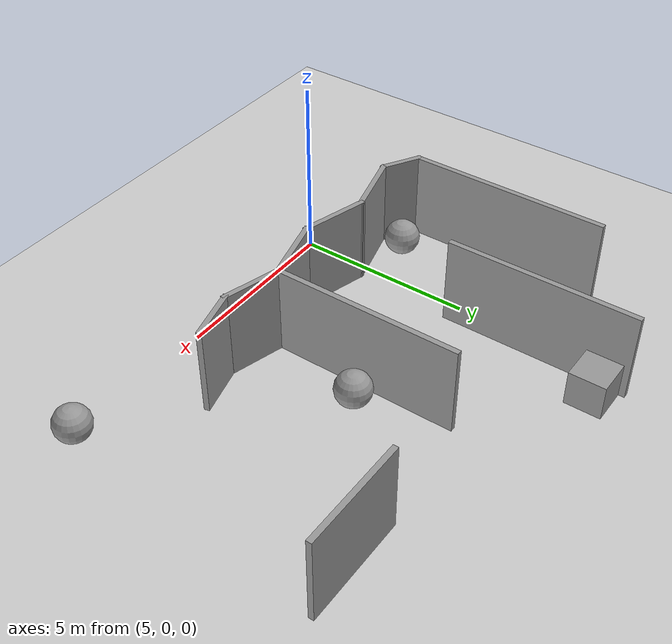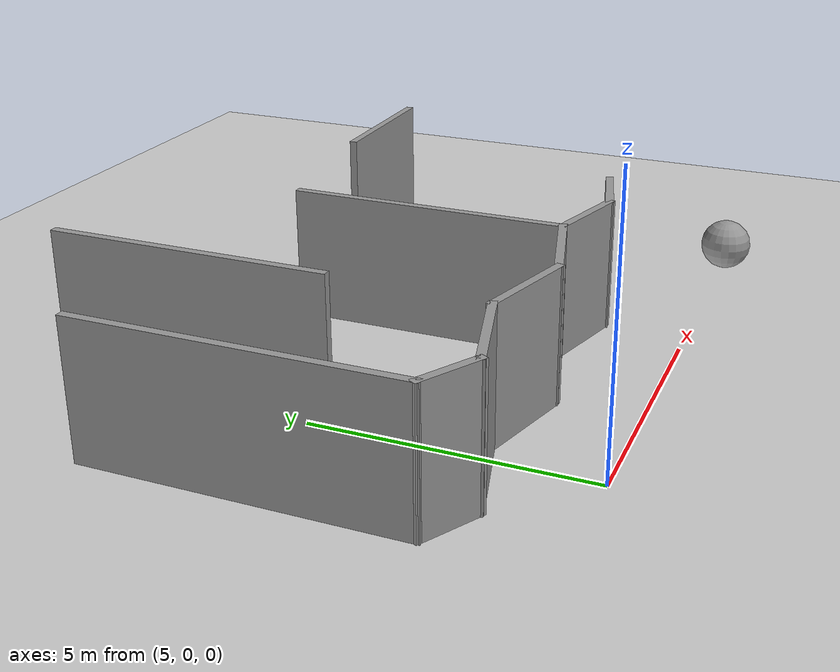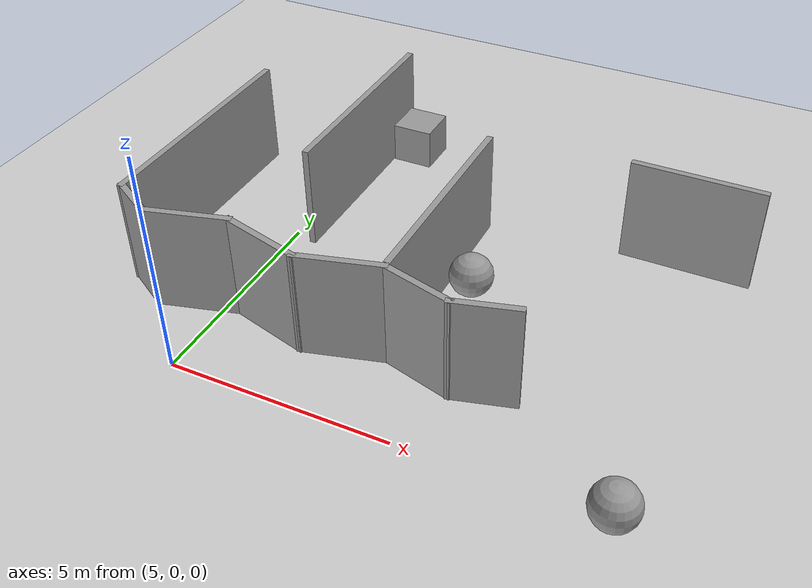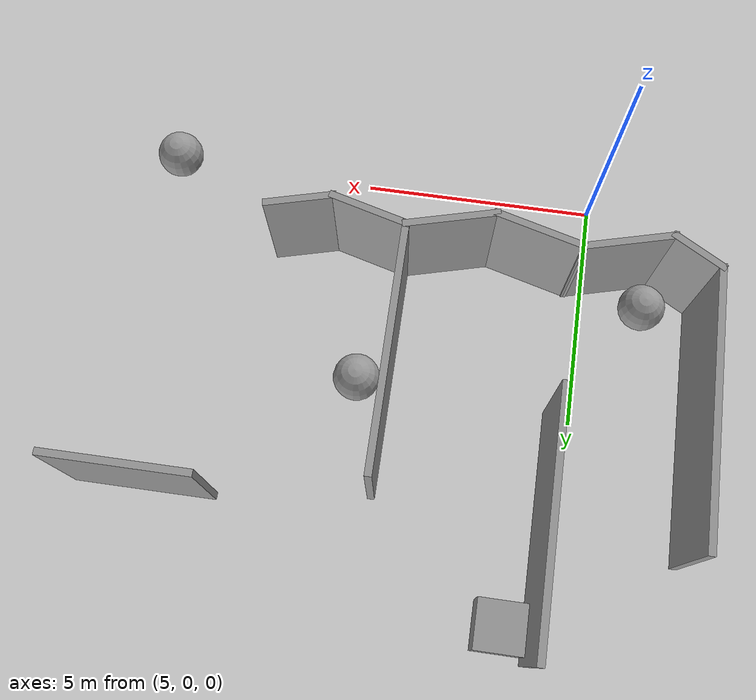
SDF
<sdf version="1.7">
 <world name="default">
  <model name="ground_plane">
   <static>1</static>
   <link name="link">
    <collision name="collision">
     <geometry><plane><normal>0 0 1</normal><size>100 100</size></plane></geometry>
     <surface>
      <contact><collide_bitmask>65535</collide_bitmask></contact>
      <friction><ode><mu>100</mu><mu2>50</mu2></ode></friction>
     </surface>
    </collision>
    <visual name="visual">
     <cast_shadows>0</cast_shadows>
     <geometry><plane><normal>0 0 1</normal><size>100 100</size></plane></geometry>
     <material>
      <script><uri>file://media/materials/scripts/gazebo.material</uri><name>Gazebo/Grey</name></script>
     </material>
    </visual>
   </link>
  </model>
  <model name="unit_sphere">
   <pose>14.3692 0.007494 0.5 0 -0 0</pose>
   <link name="link">
    <inertial>
     <mass>1</mass>
     <inertia><ixx>0.1</ixx><ixy>0</ixy><ixz>0</ixz><iyy>0.1</iyy><iyz>0</iyz><izz>0.1</izz></inertia>
    </inertial>
    <collision name="collision"><geometry><sphere><radius>0.5</radius></sphere></geometry></collision>
    <visual name="visual">
     <geometry><sphere><radius>0.5</radius></sphere></geometry>
     <material>
      <script><name>Gazebo/Grey</name><uri>file://media/materials/scripts/gazebo.material</uri></script>
     </material>
    </visual>
   </link>
  </model>
  <model name="Untitled_0">
   <link name="Wall_101">
    <pose>8.911 4.53478 0 0 -0 1.5708</pose>
    <visual name="Wall_101_Visual">
     <pose>0 0 1.25 0 -0 0</pose>
     <geometry><box><size>5.25 0.15 2.5</size></box></geometry>
     <material>
      <script><uri>file://media/materials/scripts/gazebo.material</uri><name>Gazebo/Grey</name></script>
      <ambient>1 1 1 1</ambient>
      <shader type="pixel"/>
     </material>
     <meta><layer>0</layer></meta>
    </visual>
    <collision name="Wall_101_Collision">
     <pose>0 0 1.25 0 -0 0</pose>
     <geometry><box><size>5.25 0.15 2.5</size></box></geometry>
     <surface>
      <friction>
       <ode><mu>1</mu><mu2>1</mu2><fdir1>0 0 0</fdir1><slip1>0</slip1><slip2>0</slip2></ode>
       <torsional>
        <coefficient>1</coefficient>
        <patch_radius>0</patch_radius>
        <surface_radius>0</surface_radius>
        <use_patch_radius>1</use_patch_radius>
        <ode><slip>0</slip></ode>
       </torsional>
      </friction>
      <bounce><restitution_coefficient>0</restitution_coefficient><threshold>1e+06</threshold></bounce>
      <contact>
       <collide_without_contact>0</collide_without_contact>
       <collide_without_contact_bitmask>1</collide_without_contact_bitmask>
       <collide_bitmask>1</collide_bitmask>
       <ode>
        <soft_cfm>0</soft_cfm>
        <soft_erp>0.2</soft_erp>
        <kp>1e+13</kp>
        <kd>1</kd>
        <max_vel>0.01</max_vel>
        <min_depth>0</min_depth>
       </ode>
       <bullet>
        <split_impulse>1</split_impulse>
        <split_impulse_penetration_threshold>-0.01</split_impulse_penetration_threshold>
        <soft_cfm>0</soft_cfm>
        <soft_erp>0.2</soft_erp>
        <kp>1e+13</kp>
        <kd>1</kd>
       </bullet>
      </contact>
     </surface>
    </collision>
   </link>
   <link name="Wall_105">
    <pose>13.6032 7.54437 0 0 -0 3.14159</pose>
    <visual name="Wall_105_Visual">
     <pose>0 0 1.25 0 -0 0</pose>
     <geometry><box><size>3 0.15 2.5</size></box></geometry>
     <material>
      <script><uri>file://media/materials/scripts/gazebo.material</uri><name>Gazebo/Grey</name></script>
      <ambient>1 1 1 1</ambient>
      <shader type="pixel"/>
     </material>
     <meta><layer>0</layer></meta>
    </visual>
    <collision name="Wall_105_Collision">
     <pose>0 0 1.25 0 -0 0</pose>
     <geometry><box><size>3 0.15 2.5</size></box></geometry>
     <surface>
      <friction>
       <ode><mu>1</mu><mu2>1</mu2><fdir1>0 0 0</fdir1><slip1>0</slip1><slip2>0</slip2></ode>
       <torsional>
        <coefficient>1</coefficient>
        <patch_radius>0</patch_radius>
        <surface_radius>0</surface_radius>
        <use_patch_radius>1</use_patch_radius>
        <ode><slip>0</slip></ode>
       </torsional>
      </friction>
      <bounce><restitution_coefficient>0</restitution_coefficient><threshold>1e+06</threshold></bounce>
      <contact>
       <collide_without_contact>0</collide_without_contact>
       <collide_without_contact_bitmask>1</collide_without_contact_bitmask>
       <collide_bitmask>1</collide_bitmask>
       <ode>
        <soft_cfm>0</soft_cfm>
        <soft_erp>0.2</soft_erp>
        <kp>1e+13</kp>
        <kd>1</kd>
        <max_vel>0.01</max_vel>
        <min_depth>0</min_depth>
       </ode>
       <bullet>
        <split_impulse>1</split_impulse>
        <split_impulse_penetration_threshold>-0.01</split_impulse_penetration_threshold>
        <soft_cfm>0</soft_cfm>
        <soft_erp>0.2</soft_erp>
        <kp>1e+13</kp>
        <kd>1</kd>
       </bullet>
      </contact>
     </surface>
    </collision>
   </link>
   <link name="Wall_89">
    <pose>2.59748 4.85596 0 0 0 -1.5708</pose>
    <visual name="Wall_89_Visual">
     <pose>0 0 1.25 0 -0 0</pose>
     <geometry><box><size>5.75 0.15 2.5</size></box></geometry>
     <material>
      <script><uri>file://media/materials/scripts/gazebo.material</uri><name>Gazebo/Grey</name></script>
      <ambient>1 1 1 1</ambient>
      <shader type="pixel"/>
     </material>
     <meta><layer>0</layer></meta>
    </visual>
    <collision name="Wall_89_Collision">
     <pose>0 0 1.25 0 -0 0</pose>
     <geometry><box><size>5.75 0.15 2.5</size></box></geometry>
     <surface>
      <friction>
       <ode><mu>1</mu><mu2>1</mu2><fdir1>0 0 0</fdir1><slip1>0</slip1><slip2>0</slip2></ode>
       <torsional>
        <coefficient>1</coefficient>
        <patch_radius>0</patch_radius>
        <surface_radius>0</surface_radius>
        <use_patch_radius>1</use_patch_radius>
        <ode><slip>0</slip></ode>
       </torsional>
      </friction>
      <bounce><restitution_coefficient>0</restitution_coefficient><threshold>1e+06</threshold></bounce>
      <contact>
       <collide_without_contact>0</collide_without_contact>
       <collide_without_contact_bitmask>1</collide_without_contact_bitmask>
       <collide_bitmask>1</collide_bitmask>
       <ode>
        <soft_cfm>0</soft_cfm>
        <soft_erp>0.2</soft_erp>
        <kp>1e+13</kp>
        <kd>1</kd>
        <max_vel>0.01</max_vel>
        <min_depth>0</min_depth>
       </ode>
       <bullet>
        <split_impulse>1</split_impulse>
        <split_impulse_penetration_threshold>-0.01</split_impulse_penetration_threshold>
        <soft_cfm>0</soft_cfm>
        <soft_erp>0.2</soft_erp>
        <kp>1e+13</kp>
        <kd>1</kd>
       </bullet>
      </contact>
     </surface>
    </collision>
   </link>
   <link name="Wall_91">
    <pose>3.0738 1.78096 0 0 0 -0.523599</pose>
    <visual name="Wall_91_Visual">
     <pose>0 0 1.25 0 -0 0</pose>
     <geometry><box><size>1.25 0.15 2.5</size></box></geometry>
     <material>
      <script><uri>file://media/materials/scripts/gazebo.material</uri><name>Gazebo/Grey</name></script>
      <ambient>1 1 1 1</ambient>
      <shader type="pixel"/>
     </material>
     <meta><layer>0</layer></meta>
    </visual>
    <collision name="Wall_91_Collision">
     <pose>0 0 1.25 0 -0 0</pose>
     <geometry><box><size>1.25 0.15 2.5</size></box></geometry>
     <surface>
      <friction>
       <ode><mu>1</mu><mu2>1</mu2><fdir1>0 0 0</fdir1><slip1>0</slip1><slip2>0</slip2></ode>
       <torsional>
        <coefficient>1</coefficient>
        <patch_radius>0</patch_radius>
        <surface_radius>0</surface_radius>
        <use_patch_radius>1</use_patch_radius>
        <ode><slip>0</slip></ode>
       </torsional>
      </friction>
      <bounce><restitution_coefficient>0</restitution_coefficient><threshold>1e+06</threshold></bounce>
      <contact>
       <collide_without_contact>0</collide_without_contact>
       <collide_without_contact_bitmask>1</collide_without_contact_bitmask>
       <collide_bitmask>1</collide_bitmask>
       <ode>
        <soft_cfm>0</soft_cfm>
        <soft_erp>0.2</soft_erp>
        <kp>1e+13</kp>
        <kd>1</kd>
        <max_vel>0.01</max_vel>
        <min_depth>0</min_depth>
       </ode>
       <bullet>
        <split_impulse>1</split_impulse>
        <split_impulse_penetration_threshold>-0.01</split_impulse_penetration_threshold>
        <soft_cfm>0</soft_cfm>
        <soft_erp>0.2</soft_erp>
        <kp>1e+13</kp>
        <kd>1</kd>
       </bullet>
      </contact>
     </surface>
    </collision>
   </link>
   <link name="Wall_92">
    <pose>4.44359 1.74537 0 0 -0 0.261799</pose>
    <visual name="Wall_92_Visual">
     <pose>0 0 1.25 0 -0 0</pose>
     <geometry><box><size>2 0.15 2.5</size></box></geometry>
     <material>
      <script><uri>file://media/materials/scripts/gazebo.material</uri><name>Gazebo/Grey</name></script>
      <ambient>1 1 1 1</ambient>
      <shader type="pixel"/>
     </material>
     <meta><layer>0</layer></meta>
    </visual>
    <collision name="Wall_92_Collision">
     <pose>0 0 1.25 0 -0 0</pose>
     <geometry><box><size>2 0.15 2.5</size></box></geometry>
     <surface>
      <friction>
       <ode><mu>1</mu><mu2>1</mu2><fdir1>0 0 0</fdir1><slip1>0</slip1><slip2>0</slip2></ode>
       <torsional>
        <coefficient>1</coefficient>
        <patch_radius>0</patch_radius>
        <surface_radius>0</surface_radius>
        <use_patch_radius>1</use_patch_radius>
        <ode><slip>0</slip></ode>
       </torsional>
      </friction>
      <bounce><restitution_coefficient>0</restitution_coefficient><threshold>1e+06</threshold></bounce>
      <contact>
       <collide_without_contact>0</collide_without_contact>
       <collide_without_contact_bitmask>1</collide_without_contact_bitmask>
       <collide_bitmask>1</collide_bitmask>
       <ode>
        <soft_cfm>0</soft_cfm>
        <soft_erp>0.2</soft_erp>
        <kp>1e+13</kp>
        <kd>1</kd>
        <max_vel>0.01</max_vel>
        <min_depth>0</min_depth>
       </ode>
       <bullet>
        <split_impulse>1</split_impulse>
        <split_impulse_penetration_threshold>-0.01</split_impulse_penetration_threshold>
        <soft_cfm>0</soft_cfm>
        <soft_erp>0.2</soft_erp>
        <kp>1e+13</kp>
        <kd>1</kd>
       </bullet>
      </contact>
     </surface>
    </collision>
   </link>
   <link name="Wall_93">
    <pose>6.23056 1.74537 0 0 0 -0.261799</pose>
    <visual name="Wall_93_Visual">
     <pose>0 0 1.25 0 -0 0</pose>
     <geometry><box><size>2 0.15 2.5</size></box></geometry>
     <material>
      <script><uri>file://media/materials/scripts/gazebo.material</uri><name>Gazebo/Grey</name></script>
      <ambient>1 1 1 1</ambient>
      <shader type="pixel"/>
     </material>
     <meta><layer>0</layer></meta>
    </visual>
    <collision name="Wall_93_Collision">
     <pose>0 0 1.25 0 -0 0</pose>
     <geometry><box><size>2 0.15 2.5</size></box></geometry>
     <surface>
      <friction>
       <ode><mu>1</mu><mu2>1</mu2><fdir1>0 0 0</fdir1><slip1>0</slip1><slip2>0</slip2></ode>
       <torsional>
        <coefficient>1</coefficient>
        <patch_radius>0</patch_radius>
        <surface_radius>0</surface_radius>
        <use_patch_radius>1</use_patch_radius>
        <ode><slip>0</slip></ode>
       </torsional>
      </friction>
      <bounce><restitution_coefficient>0</restitution_coefficient><threshold>1e+06</threshold></bounce>
      <contact>
       <collide_without_contact>0</collide_without_contact>
       <collide_without_contact_bitmask>1</collide_without_contact_bitmask>
       <collide_bitmask>1</collide_bitmask>
       <ode>
        <soft_cfm>0</soft_cfm>
        <soft_erp>0.2</soft_erp>
        <kp>1e+13</kp>
        <kd>1</kd>
        <max_vel>0.01</max_vel>
        <min_depth>0</min_depth>
       </ode>
       <bullet>
        <split_impulse>1</split_impulse>
        <split_impulse_penetration_threshold>-0.01</split_impulse_penetration_threshold>
        <soft_cfm>0</soft_cfm>
        <soft_erp>0.2</soft_erp>
        <kp>1e+13</kp>
        <kd>1</kd>
       </bullet>
      </contact>
     </surface>
    </collision>
   </link>
   <link name="Wall_94">
    <pose>8.01752 1.74537 0 0 -0 0.261799</pose>
    <visual name="Wall_94_Visual">
     <pose>0 0 1.25 0 -0 0</pose>
     <geometry><box><size>2 0.15 2.5</size></box></geometry>
     <material>
      <script><uri>file://media/materials/scripts/gazebo.material</uri><name>Gazebo/Grey</name></script>
      <ambient>1 1 1 1</ambient>
      <shader type="pixel"/>
     </material>
     <meta><layer>0</layer></meta>
    </visual>
    <collision name="Wall_94_Collision">
     <pose>0 0 1.25 0 -0 0</pose>
     <geometry><box><size>2 0.15 2.5</size></box></geometry>
     <surface>
      <friction>
       <ode><mu>1</mu><mu2>1</mu2><fdir1>0 0 0</fdir1><slip1>0</slip1><slip2>0</slip2></ode>
       <torsional>
        <coefficient>1</coefficient>
        <patch_radius>0</patch_radius>
        <surface_radius>0</surface_radius>
        <use_patch_radius>1</use_patch_radius>
        <ode><slip>0</slip></ode>
       </torsional>
      </friction>
      <bounce><restitution_coefficient>0</restitution_coefficient><threshold>1e+06</threshold></bounce>
      <contact>
       <collide_without_contact>0</collide_without_contact>
       <collide_without_contact_bitmask>1</collide_without_contact_bitmask>
       <collide_bitmask>1</collide_bitmask>
       <ode>
        <soft_cfm>0</soft_cfm>
        <soft_erp>0.2</soft_erp>
        <kp>1e+13</kp>
        <kd>1</kd>
        <max_vel>0.01</max_vel>
        <min_depth>0</min_depth>
       </ode>
       <bullet>
        <split_impulse>1</split_impulse>
        <split_impulse_penetration_threshold>-0.01</split_impulse_penetration_threshold>
        <soft_cfm>0</soft_cfm>
        <soft_erp>0.2</soft_erp>
        <kp>1e+13</kp>
        <kd>1</kd>
       </bullet>
      </contact>
     </surface>
    </collision>
   </link>
   <link name="Wall_95">
    <pose>9.68374 1.77772 0 0 0 -0.261799</pose>
    <visual name="Wall_95_Visual">
     <pose>0 0 1.25 0 -0 0</pose>
     <geometry><box><size>1.75 0.15 2.5</size></box></geometry>
     <material>
      <script><uri>file://media/materials/scripts/gazebo.material</uri><name>Gazebo/Grey</name></script>
      <ambient>1 1 1 1</ambient>
      <shader type="pixel"/>
     </material>
     <meta><layer>0</layer></meta>
    </visual>
    <collision name="Wall_95_Collision">
     <pose>0 0 1.25 0 -0 0</pose>
     <geometry><box><size>1.75 0.15 2.5</size></box></geometry>
     <surface>
      <friction>
       <ode><mu>1</mu><mu2>1</mu2><fdir1>0 0 0</fdir1><slip1>0</slip1><slip2>0</slip2></ode>
       <torsional>
        <coefficient>1</coefficient>
        <patch_radius>0</patch_radius>
        <surface_radius>0</surface_radius>
        <use_patch_radius>1</use_patch_radius>
        <ode><slip>0</slip></ode>
       </torsional>
      </friction>
      <bounce><restitution_coefficient>0</restitution_coefficient><threshold>1e+06</threshold></bounce>
      <contact>
       <collide_without_contact>0</collide_without_contact>
       <collide_without_contact_bitmask>1</collide_without_contact_bitmask>
       <collide_bitmask>1</collide_bitmask>
       <ode>
        <soft_cfm>0</soft_cfm>
        <soft_erp>0.2</soft_erp>
        <kp>1e+13</kp>
        <kd>1</kd>
        <max_vel>0.01</max_vel>
        <min_depth>0</min_depth>
       </ode>
       <bullet>
        <split_impulse>1</split_impulse>
        <split_impulse_penetration_threshold>-0.01</split_impulse_penetration_threshold>
        <soft_cfm>0</soft_cfm>
        <soft_erp>0.2</soft_erp>
        <kp>1e+13</kp>
        <kd>1</kd>
       </bullet>
      </contact>
     </surface>
    </collision>
   </link>
   <link name="Wall_96">
    <pose>11.1085 1.74537 0 0 -0 0.261799</pose>
    <visual name="Wall_96_Visual">
     <pose>0 0 1.25 0 -0 0</pose>
     <geometry><box><size>1.5 0.15 2.5</size></box></geometry>
     <material>
      <script><uri>file://media/materials/scripts/gazebo.material</uri><name>Gazebo/Grey</name></script>
      <ambient>1 1 1 1</ambient>
      <shader type="pixel"/>
     </material>
     <meta><layer>0</layer></meta>
    </visual>
    <collision name="Wall_96_Collision">
     <pose>0 0 1.25 0 -0 0</pose>
     <geometry><box><size>1.5 0.15 2.5</size></box></geometry>
     <surface>
      <friction>
       <ode><mu>1</mu><mu2>1</mu2><fdir1>0 0 0</fdir1><slip1>0</slip1><slip2>0</slip2></ode>
       <torsional>
        <coefficient>1</coefficient>
        <patch_radius>0</patch_radius>
        <surface_radius>0</surface_radius>
        <use_patch_radius>1</use_patch_radius>
        <ode><slip>0</slip></ode>
       </torsional>
      </friction>
      <bounce><restitution_coefficient>0</restitution_coefficient><threshold>1e+06</threshold></bounce>
      <contact>
       <collide_without_contact>0</collide_without_contact>
       <collide_without_contact_bitmask>1</collide_without_contact_bitmask>
       <collide_bitmask>1</collide_bitmask>
       <ode>
        <soft_cfm>0</soft_cfm>
        <soft_erp>0.2</soft_erp>
        <kp>1e+13</kp>
        <kd>1</kd>
        <max_vel>0.01</max_vel>
        <min_depth>0</min_depth>
       </ode>
       <bullet>
        <split_impulse>1</split_impulse>
        <split_impulse_penetration_threshold>-0.01</split_impulse_penetration_threshold>
        <soft_cfm>0</soft_cfm>
        <soft_erp>0.2</soft_erp>
        <kp>1e+13</kp>
        <kd>1</kd>
       </bullet>
      </contact>
     </surface>
    </collision>
   </link>
   <link name="Wall_99">
    <pose>5.45408 7.42695 0 0 0 -1.5708</pose>
    <visual name="Wall_99_Visual">
     <pose>0 0 1.25 0 -0 0</pose>
     <geometry><box><size>5.25 0.15 2.5</size></box></geometry>
     <material>
      <script><uri>file://media/materials/scripts/gazebo.material</uri><name>Gazebo/Grey</name></script>
      <ambient>1 1 1 1</ambient>
      <shader type="pixel"/>
     </material>
     <meta><layer>0</layer></meta>
    </visual>
    <collision name="Wall_99_Collision">
     <pose>0 0 1.25 0 -0 0</pose>
     <geometry><box><size>5.25 0.15 2.5</size></box></geometry>
     <surface>
      <friction>
       <ode><mu>1</mu><mu2>1</mu2><fdir1>0 0 0</fdir1><slip1>0</slip1><slip2>0</slip2></ode>
       <torsional>
        <coefficient>1</coefficient>
        <patch_radius>0</patch_radius>
        <surface_radius>0</surface_radius>
        <use_patch_radius>1</use_patch_radius>
        <ode><slip>0</slip></ode>
       </torsional>
      </friction>
      <bounce><restitution_coefficient>0</restitution_coefficient><threshold>1e+06</threshold></bounce>
      <contact>
       <collide_without_contact>0</collide_without_contact>
       <collide_without_contact_bitmask>1</collide_without_contact_bitmask>
       <collide_bitmask>1</collide_bitmask>
       <ode>
        <soft_cfm>0</soft_cfm>
        <soft_erp>0.2</soft_erp>
        <kp>1e+13</kp>
        <kd>1</kd>
        <max_vel>0.01</max_vel>
        <min_depth>0</min_depth>
       </ode>
       <bullet>
        <split_impulse>1</split_impulse>
        <split_impulse_penetration_threshold>-0.01</split_impulse_penetration_threshold>
        <soft_cfm>0</soft_cfm>
        <soft_erp>0.2</soft_erp>
        <kp>1e+13</kp>
        <kd>1</kd>
       </bullet>
      </contact>
     </surface>
    </collision>
   </link>
   <link name="link_12">
    <inertial>
     <mass>1</mass>
     <inertia>
      <ixx>0.166667</ixx>
      <ixy>0</ixy>
      <ixz>0</ixz>
      <iyy>0.166667</iyy>
      <iyz>0</iyz>
      <izz>0.166667</izz>
     </inertia>
    </inertial>
    <pose>6.05031 9.38961 0.5 0 -0 0</pose>
    <visual name="visual">
     <geometry><box><size>1 1 1</size></box></geometry>
     <material>
      <lighting>1</lighting>
      <script><uri>file://media/materials/scripts/gazebo.material</uri><name>Gazebo/Grey</name></script>
      <shader type="pixel"/>
     </material>
    </visual>
    <collision name="collision">
     <geometry><box><size>1 1 1</size></box></geometry>
     <surface>
      <friction>
       <ode><mu>1</mu><mu2>1</mu2><fdir1>0 0 0</fdir1><slip1>0</slip1><slip2>0</slip2></ode>
       <torsional>
        <coefficient>1</coefficient>
        <patch_radius>0</patch_radius>
        <surface_radius>0</surface_radius>
        <use_patch_radius>1</use_patch_radius>
        <ode><slip>0</slip></ode>
       </torsional>
      </friction>
      <bounce><restitution_coefficient>0</restitution_coefficient><threshold>1e+06</threshold></bounce>
      <contact>
       <collide_without_contact>0</collide_without_contact>
       <collide_without_contact_bitmask>1</collide_without_contact_bitmask>
       <collide_bitmask>1</collide_bitmask>
       <ode>
        <soft_cfm>0</soft_cfm>
        <soft_erp>0.2</soft_erp>
        <kp>1e+13</kp>
        <kd>1</kd>
        <max_vel>0.01</max_vel>
        <min_depth>0</min_depth>
       </ode>
       <bullet>
        <split_impulse>1</split_impulse>
        <split_impulse_penetration_threshold>-0.01</split_impulse_penetration_threshold>
        <soft_cfm>0</soft_cfm>
        <soft_erp>0.2</soft_erp>
        <kp>1e+13</kp>
        <kd>1</kd>
       </bullet>
      </contact>
     </surface>
    </collision>
   </link>
   <link name="link_17">
    <inertial>
     <mass>1</mass>
     <inertia><ixx>0.1</ixx><ixy>0</ixy><ixz>0</ixz><iyy>0.1</iyy><iyz>0</iyz><izz>0.1</izz></inertia>
    </inertial>
    <pose>9.56883 4.71018 0.5 0 -0 0</pose>
    <visual name="visual">
     <geometry><sphere><radius>0.5</radius></sphere></geometry>
     <material>
      <lighting>1</lighting>
      <script><uri>file://media/materials/scripts/gazebo.material</uri><name>Gazebo/Grey</name></script>
      <shader type="pixel"/>
     </material>
    </visual>
    <collision name="collision">
     <geometry><sphere><radius>0.5</radius></sphere></geometry>
     <surface>
      <friction>
       <ode><mu>1</mu><mu2>1</mu2><fdir1>0 0 0</fdir1><slip1>0</slip1><slip2>0</slip2></ode>
       <torsional>
        <coefficient>1</coefficient>
        <patch_radius>0</patch_radius>
        <surface_radius>0</surface_radius>
        <use_patch_radius>1</use_patch_radius>
        <ode><slip>0</slip></ode>
       </torsional>
      </friction>
      <bounce><restitution_coefficient>0</restitution_coefficient><threshold>1e+06</threshold></bounce>
      <contact>
       <collide_without_contact>0</collide_without_contact>
       <collide_without_contact_bitmask>1</collide_without_contact_bitmask>
       <collide_bitmask>1</collide_bitmask>
       <ode>
        <soft_cfm>0</soft_cfm>
        <soft_erp>0.2</soft_erp>
        <kp>1e+13</kp>
        <kd>1</kd>
        <max_vel>0.01</max_vel>
        <min_depth>0</min_depth>
       </ode>
       <bullet>
        <split_impulse>1</split_impulse>
        <split_impulse_penetration_threshold>-0.01</split_impulse_penetration_threshold>
        <soft_cfm>0</soft_cfm>
        <soft_erp>0.2</soft_erp>
        <kp>1e+13</kp>
        <kd>1</kd>
       </bullet>
      </contact>
     </surface>
    </collision>
   </link>
   <link name="link_19">
    <inertial>
     <mass>1</mass>
     <inertia><ixx>0.1</ixx><ixy>0</ixy><ixz>0</ixz><iyy>0.1</iyy><iyz>0</iyz><izz>0.1</izz></inertia>
    </inertial>
    <pose>3.69604 2.29587 0.5 0 -0 0</pose>
    <visual name="visual">
     <geometry><sphere><radius>0.5</radius></sphere></geometry>
     <material>
      <lighting>1</lighting>
      <script><uri>file://media/materials/scripts/gazebo.material</uri><name>Gazebo/Grey</name></script>
      <shader type="pixel"/>
     </material>
    </visual>
    <collision name="collision">
     <geometry><sphere><radius>0.5</radius></sphere></geometry>
     <surface>
      <friction>
       <ode><mu>1</mu><mu2>1</mu2><fdir1>0 0 0</fdir1><slip1>0</slip1><slip2>0</slip2></ode>
       <torsional>
        <coefficient>1</coefficient>
        <patch_radius>0</patch_radius>
        <surface_radius>0</surface_radius>
        <use_patch_radius>1</use_patch_radius>
        <ode><slip>0</slip></ode>
       </torsional>
      </friction>
      <bounce><restitution_coefficient>0</restitution_coefficient><threshold>1e+06</threshold></bounce>
      <contact>
       <collide_without_contact>0</collide_without_contact>
       <collide_without_contact_bitmask>1</collide_without_contact_bitmask>
       <collide_bitmask>1</collide_bitmask>
       <ode>
        <soft_cfm>0</soft_cfm>
        <soft_erp>0.2</soft_erp>
        <kp>1e+13</kp>
        <kd>1</kd>
        <max_vel>0.01</max_vel>
        <min_depth>0</min_depth>
       </ode>
       <bullet>
        <split_impulse>1</split_impulse>
        <split_impulse_penetration_threshold>-0.01</split_impulse_penetration_threshold>
        <soft_cfm>0</soft_cfm>
        <soft_erp>0.2</soft_erp>
        <kp>1e+13</kp>
        <kd>1</kd>
       </bullet>
      </contact>
     </surface>
    </collision>
   </link>
   <static>1</static>
   <pose>0.028156 0.004264 0 0 -0 0</pose>
  </model>
 </world>
</sdf>
